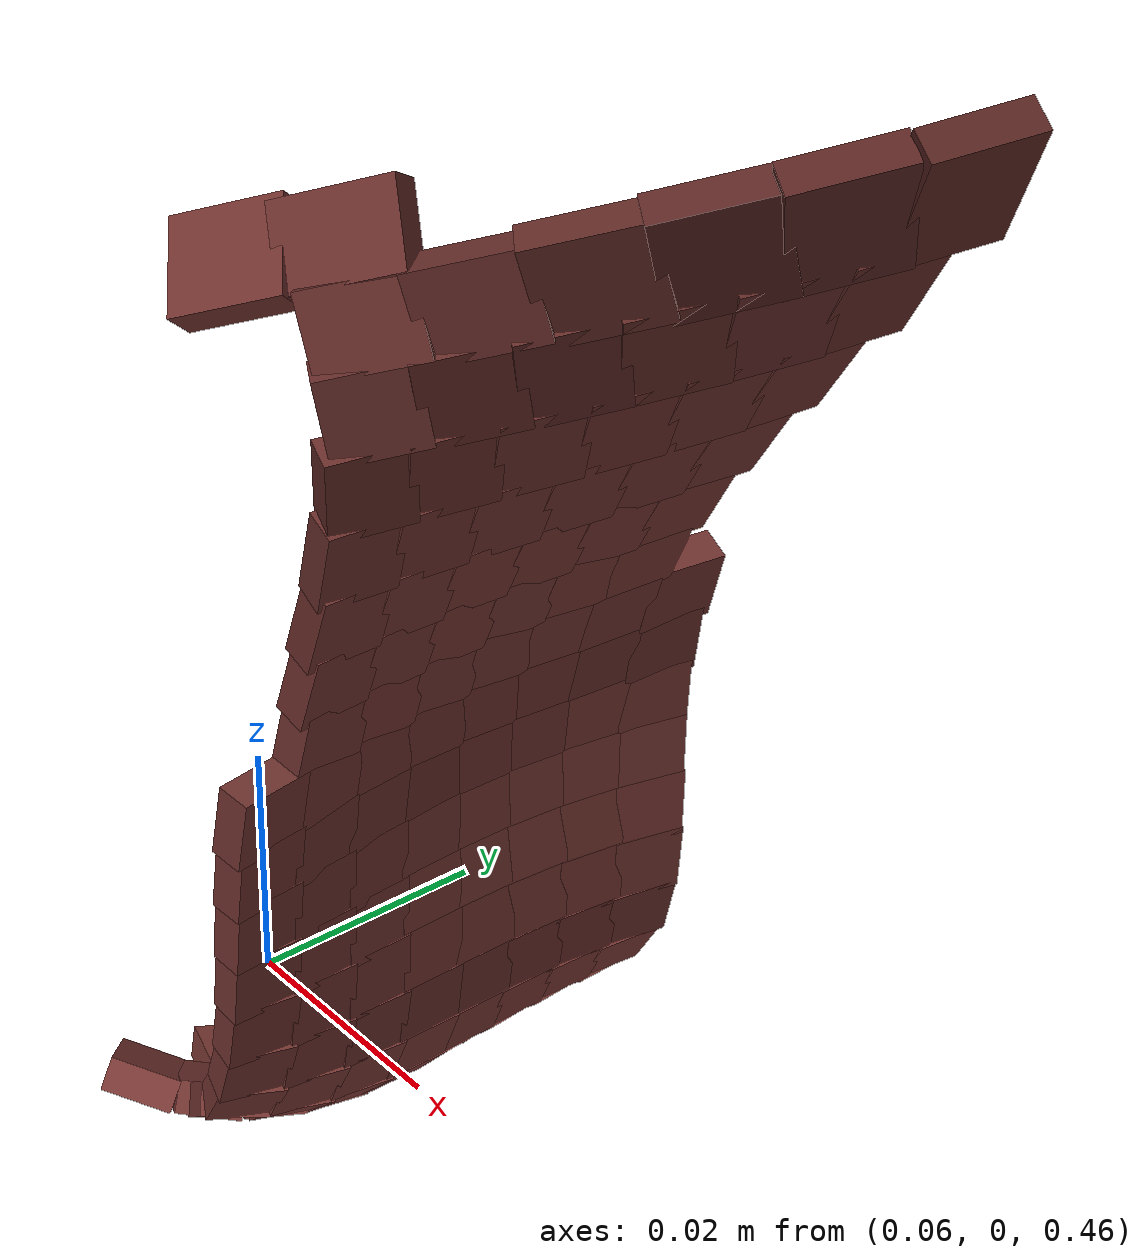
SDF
<sdf version="1.8">
 <model name="tissue">
  <static>true</static>
  <link name="t0">
   <pose>0.09798 -0.01728 0.54351 -1.0040 0.3484 -2.5284</pose>
   <visual name="v">
    <geometry><box><size>0.00852 0.00582 0.0025</size></box></geometry>
    <material>
     <ambient>0.225 0.099 0.092 1</ambient>
     <diffuse>0.409 0.181 0.168 1</diffuse>
     <specular>0.10 0.07 0.07 1</specular>
    </material>
   </visual>
  </link>
  <link name="t1">
   <pose>0.09230 -0.02112 0.54099 -0.7870 0.3561 -2.5637</pose>
   <visual name="v">
    <geometry><box><size>0.00785 0.00653 0.0025</size></box></geometry>
    <material>
     <ambient>0.237 0.106 0.099 1</ambient>
     <diffuse>0.432 0.193 0.179 1</diffuse>
     <specular>0.10 0.07 0.07 1</specular>
    </material>
   </visual>
  </link>
  <link name="t17">
   <pose>0.11983 0.01032 0.54684 1.0002 0.1118 -1.8621</pose>
   <visual name="v">
    <geometry><box><size>0.00759 0.01160 0.0025</size></box></geometry>
    <material>
     <ambient>0.178 0.073 0.067 1</ambient>
     <diffuse>0.324 0.132 0.122 1</diffuse>
     <specular>0.10 0.07 0.07 1</specular>
    </material>
   </visual>
  </link>
  <link name="t18">
   <pose>0.11719 0.00394 0.54581 1.0706 0.1767 -2.0452</pose>
   <visual name="v">
    <geometry><box><size>0.00800 0.01048 0.0025</size></box></geometry>
    <material>
     <ambient>0.184 0.076 0.070 1</ambient>
     <diffuse>0.335 0.138 0.128 1</diffuse>
     <specular>0.10 0.07 0.07 1</specular>
    </material>
   </visual>
  </link>
  <link name="t19">
   <pose>0.11354 -0.00214 0.54438 1.1790 0.2157 -2.1660</pose>
   <visual name="v">
    <geometry><box><size>0.00814 0.00904 0.0025</size></box></geometry>
    <material>
     <ambient>0.192 0.080 0.074 1</ambient>
     <diffuse>0.349 0.146 0.135 1</diffuse>
     <specular>0.10 0.07 0.07 1</specular>
    </material>
   </visual>
  </link>
  <link name="t20">
   <pose>0.10933 -0.00780 0.54273 1.3340 0.2398 -2.2466</pose>
   <visual name="v">
    <geometry><box><size>0.00802 0.00755 0.0025</size></box></geometry>
    <material>
     <ambient>0.201 0.086 0.079 1</ambient>
     <diffuse>0.365 0.156 0.144 1</diffuse>
     <specular>0.10 0.07 0.07 1</specular>
    </material>
   </visual>
  </link>
  <link name="t21">
   <pose>0.10490 -0.01299 0.54100 1.5450 0.2550 -2.3008</pose>
   <visual name="v">
    <geometry><box><size>0.00770 0.00632 0.0025</size></box></geometry>
    <material>
     <ambient>0.210 0.091 0.084 1</ambient>
     <diffuse>0.382 0.165 0.153 1</diffuse>
     <specular>0.10 0.07 0.07 1</specular>
    </material>
   </visual>
  </link>
  <link name="t22">
   <pose>0.10050 -0.01772 0.53928 -1.3326 0.2649 -2.3378</pose>
   <visual name="v">
    <geometry><box><size>0.00727 0.00560 0.0025</size></box></geometry>
    <material>
     <ambient>0.220 0.096 0.089 1</ambient>
     <diffuse>0.400 0.175 0.162 1</diffuse>
     <specular>0.10 0.07 0.07 1</specular>
    </material>
   </visual>
  </link>
  <link name="t39">
   <pose>0.11379 0.00980 0.53842 0.9377 0.0717 -1.7851</pose>
   <visual name="v">
    <geometry><box><size>0.00699 0.01139 0.0025</size></box></geometry>
    <material>
     <ambient>0.191 0.080 0.074 1</ambient>
     <diffuse>0.348 0.146 0.135 1</diffuse>
     <specular>0.10 0.07 0.07 1</specular>
    </material>
   </visual>
  </link>
  <link name="t40">
   <pose>0.11200 0.00377 0.53781 0.9821 0.1148 -1.9192</pose>
   <visual name="v">
    <geometry><box><size>0.00714 0.01061 0.0025</size></box></geometry>
    <material>
     <ambient>0.195 0.082 0.076 1</ambient>
     <diffuse>0.355 0.150 0.139 1</diffuse>
     <specular>0.10 0.07 0.07 1</specular>
    </material>
   </visual>
  </link>
  <link name="t41">
   <pose>0.10955 -0.00207 0.53699 1.0518 0.1416 -2.0068</pose>
   <visual name="v">
    <geometry><box><size>0.00711 0.00953 0.0025</size></box></geometry>
    <material>
     <ambient>0.200 0.085 0.079 1</ambient>
     <diffuse>0.364 0.155 0.144 1</diffuse>
     <specular>0.10 0.07 0.07 1</specular>
    </material>
   </visual>
  </link>
  <link name="t42">
   <pose>0.10676 -0.00762 0.53604 1.1540 0.1578 -2.0616</pose>
   <visual name="v">
    <geometry><box><size>0.00694 0.00831 0.0025</size></box></geometry>
    <material>
     <ambient>0.206 0.089 0.082 1</ambient>
     <diffuse>0.375 0.161 0.149 1</diffuse>
     <specular>0.10 0.07 0.07 1</specular>
    </material>
   </visual>
  </link>
  <link name="t43">
   <pose>0.10383 -0.01286 0.53505 1.3000 0.1671 -2.0939</pose>
   <visual name="v">
    <geometry><box><size>0.00667 0.00714 0.0025</size></box></geometry>
    <material>
     <ambient>0.213 0.092 0.086 1</ambient>
     <diffuse>0.387 0.168 0.156 1</diffuse>
     <specular>0.10 0.07 0.07 1</specular>
    </material>
   </visual>
  </link>
  <link name="t44">
   <pose>0.10091 -0.01780 0.53407 1.5025 0.1720 -2.1114</pose>
   <visual name="v">
    <geometry><box><size>0.00635 0.00617 0.0025</size></box></geometry>
    <material>
     <ambient>0.219 0.096 0.089 1</ambient>
     <diffuse>0.398 0.174 0.162 1</diffuse>
     <specular>0.10 0.07 0.07 1</specular>
    </material>
   </visual>
  </link>
  <link name="t61">
   <pose>0.10783 0.00929 0.53066 0.9228 0.0462 -1.7342</pose>
   <visual name="v">
    <geometry><box><size>0.00652 0.01042 0.0025</size></box></geometry>
    <material>
     <ambient>0.204 0.087 0.081 1</ambient>
     <diffuse>0.371 0.159 0.147 1</diffuse>
     <specular>0.10 0.07 0.07 1</specular>
    </material>
   </visual>
  </link>
  <link name="t62">
   <pose>0.10661 0.00359 0.53031 0.9521 0.0696 -1.8185</pose>
   <visual name="v">
    <geometry><box><size>0.00653 0.00993 0.0025</size></box></geometry>
    <material>
     <ambient>0.207 0.089 0.082 1</ambient>
     <diffuse>0.376 0.162 0.150 1</diffuse>
     <specular>0.10 0.07 0.07 1</specular>
    </material>
   </visual>
  </link>
  <link name="t63">
   <pose>0.10504 -0.00198 0.52987 1.0006 0.0828 -1.8671</pose>
   <visual name="v">
    <geometry><box><size>0.00644 0.00920 0.0025</size></box></geometry>
    <material>
     <ambient>0.210 0.091 0.084 1</ambient>
     <diffuse>0.382 0.165 0.153 1</diffuse>
     <specular>0.10 0.07 0.07 1</specular>
    </material>
   </visual>
  </link>
  <link name="t64">
   <pose>0.10331 -0.00737 0.52937 1.0722 0.0889 -1.8896</pose>
   <visual name="v">
    <geometry><box><size>0.00627 0.00835 0.0025</size></box></geometry>
    <material>
     <ambient>0.214 0.093 0.086 1</ambient>
     <diffuse>0.389 0.169 0.157 1</diffuse>
     <specular>0.10 0.07 0.07 1</specular>
    </material>
   </visual>
  </link>
  <link name="t65">
   <pose>0.10157 -0.01258 0.52888 1.1739 0.0900 -1.8938</pose>
   <visual name="v">
    <geometry><box><size>0.00607 0.00746 0.0025</size></box></geometry>
    <material>
     <ambient>0.217 0.095 0.088 1</ambient>
     <diffuse>0.395 0.173 0.160 1</diffuse>
     <specular>0.10 0.07 0.07 1</specular>
    </material>
   </visual>
  </link>
  <link name="t66">
   <pose>0.09989 -0.01762 0.52840 1.3144 0.0883 -1.8873</pose>
   <visual name="v">
    <geometry><box><size>0.00587 0.00664 0.0025</size></box></geometry>
    <material>
     <ambient>0.221 0.097 0.090 1</ambient>
     <diffuse>0.402 0.176 0.164 1</diffuse>
     <specular>0.10 0.07 0.07 1</specular>
    </material>
   </visual>
  </link>
  <link name="t83">
   <pose>0.10254 0.00883 0.52370 0.9444 0.0309 -1.7051</pose>
   <visual name="v">
    <geometry><box><size>0.00616 0.00916 0.0025</size></box></geometry>
    <material>
     <ambient>0.215 0.094 0.087 1</ambient>
     <diffuse>0.392 0.171 0.158 1</diffuse>
     <specular>0.10 0.07 0.07 1</specular>
    </material>
   </visual>
  </link>
  <link name="t84">
   <pose>0.10168 0.00342 0.52350 0.9635 0.0401 -1.7455</pose>
   <visual name="v">
    <geometry><box><size>0.00611 0.00888 0.0025</size></box></geometry>
    <material>
     <ambient>0.217 0.095 0.088 1</ambient>
     <diffuse>0.395 0.172 0.160 1</diffuse>
     <specular>0.10 0.07 0.07 1</specular>
    </material>
   </visual>
  </link>
  <link name="t85">
   <pose>0.10069 -0.00190 0.52327 0.9992 0.0429 -1.7578</pose>
   <visual name="v">
    <geometry><box><size>0.00601 0.00843 0.0025</size></box></geometry>
    <material>
     <ambient>0.219 0.096 0.089 1</ambient>
     <diffuse>0.399 0.175 0.162 1</diffuse>
     <specular>0.10 0.07 0.07 1</specular>
    </material>
   </visual>
  </link>
  <link name="t86">
   <pose>0.09971 -0.00712 0.52304 1.0538 0.0411 -1.7498</pose>
   <visual name="v">
    <geometry><box><size>0.00589 0.00789 0.0025</size></box></geometry>
    <material>
     <ambient>0.221 0.097 0.090 1</ambient>
     <diffuse>0.403 0.177 0.164 1</diffuse>
     <specular>0.10 0.07 0.07 1</specular>
    </material>
   </visual>
  </link>
  <link name="t87">
   <pose>0.09883 -0.01224 0.52284 1.1302 0.0363 -1.7288</pose>
   <visual name="v">
    <geometry><box><size>0.00578 0.00731 0.0025</size></box></geometry>
    <material>
     <ambient>0.223 0.098 0.091 1</ambient>
     <diffuse>0.406 0.179 0.166 1</diffuse>
     <specular>0.10 0.07 0.07 1</specular>
    </material>
   </visual>
  </link>
  <link name="t88">
   <pose>0.09809 -0.01730 0.52267 1.2317 0.0304 -1.7026</pose>
   <visual name="v">
    <geometry><box><size>0.00569 0.00675 0.0025</size></box></geometry>
    <material>
     <ambient>0.225 0.099 0.092 1</ambient>
     <diffuse>0.409 0.180 0.167 1</diffuse>
     <specular>0.10 0.07 0.07 1</specular>
    </material>
   </visual>
  </link>
  <link name="t105">
   <pose>0.09819 0.00846 0.51746 1.0007 0.0215 -1.6922</pose>
   <visual name="v">
    <geometry><box><size>0.00588 0.00792 0.0025</size></box></geometry>
    <material>
     <ambient>0.225 0.099 0.092 1</ambient>
     <diffuse>0.409 0.180 0.167 1</diffuse>
     <specular>0.10 0.07 0.07 1</specular>
    </material>
   </visual>
  </link>
  <link name="t106">
   <pose>0.09753 0.00328 0.51734 1.0116 0.0223 -1.6968</pose>
   <visual name="v">
    <geometry><box><size>0.00581 0.00776 0.0025</size></box></geometry>
    <material>
     <ambient>0.226 0.100 0.093 1</ambient>
     <diffuse>0.411 0.182 0.169 1</diffuse>
     <specular>0.10 0.07 0.07 1</specular>
    </material>
   </visual>
  </link>
  <link name="t107">
   <pose>0.09691 -0.00183 0.51723 1.0387 0.0193 -1.6795</pose>
   <visual name="v">
    <geometry><box><size>0.00572 0.00751 0.0025</size></box></geometry>
    <material>
     <ambient>0.227 0.101 0.093 1</ambient>
     <diffuse>0.414 0.183 0.170 1</diffuse>
     <specular>0.10 0.07 0.07 1</specular>
    </material>
   </visual>
  </link>
  <link name="t108">
   <pose>0.09644 -0.00688 0.51715 1.0823 0.0136 -1.6476</pose>
   <visual name="v">
    <geometry><box><size>0.00566 0.00720 0.0025</size></box></geometry>
    <material>
     <ambient>0.228 0.101 0.094 1</ambient>
     <diffuse>0.415 0.184 0.171 1</diffuse>
     <specular>0.10 0.07 0.07 1</specular>
    </material>
   </visual>
  </link>
  <link name="t109">
   <pose>0.09615 -0.01191 0.51710 1.1425 0.0067 -1.6087</pose>
   <visual name="v">
    <geometry><box><size>0.00563 0.00687 0.0025</size></box></geometry>
    <material>
     <ambient>0.229 0.102 0.094 1</ambient>
     <diffuse>0.417 0.185 0.171 1</diffuse>
     <specular>0.10 0.07 0.07 1</specular>
    </material>
   </visual>
  </link>
  <link name="t110">
   <pose>0.09605 -0.01694 0.51708 1.2182 0.0000 -1.5709</pose>
   <visual name="v">
    <geometry><box><size>0.00565 0.00655 0.0025</size></box></geometry>
    <material>
     <ambient>0.229 0.102 0.094 1</ambient>
     <diffuse>0.417 0.185 0.172 1</diffuse>
     <specular>0.10 0.07 0.07 1</specular>
    </material>
   </visual>
  </link>
  <link name="t127">
   <pose>0.09484 0.00817 0.51181 1.0916 0.0149 -1.6903</pose>
   <visual name="v">
    <geometry><box><size>0.00568 0.00686 0.0025</size></box></geometry>
    <material>
     <ambient>0.232 0.103 0.096 1</ambient>
     <diffuse>0.422 0.188 0.174 1</diffuse>
     <specular>0.10 0.07 0.07 1</specular>
    </material>
   </visual>
  </link>
  <link name="t128">
   <pose>0.09429 0.00317 0.51174 1.0955 0.0120 -1.6669</pose>
   <visual name="v">
    <geometry><box><size>0.00559 0.00678 0.0025</size></box></geometry>
    <material>
     <ambient>0.233 0.104 0.096 1</ambient>
     <diffuse>0.424 0.189 0.175 1</diffuse>
     <specular>0.10 0.07 0.07 1</specular>
    </material>
   </visual>
  </link>
  <link name="t129">
   <pose>0.09390 -0.00177 0.51170 1.1155 0.0070 -1.6273</pose>
   <visual name="v">
    <geometry><box><size>0.00553 0.00665 0.0025</size></box></geometry>
    <material>
     <ambient>0.234 0.104 0.097 1</ambient>
     <diffuse>0.425 0.190 0.176 1</diffuse>
     <specular>0.10 0.07 0.07 1</specular>
    </material>
   </visual>
  </link>
  <link name="t130">
   <pose>0.09374 -0.00669 0.51168 1.1499 0.0010 -1.5790</pose>
   <visual name="v">
    <geometry><box><size>0.00551 0.00650 0.0025</size></box></geometry>
    <material>
     <ambient>0.234 0.105 0.097 1</ambient>
     <diffuse>0.426 0.190 0.176 1</diffuse>
     <specular>0.10 0.07 0.07 1</specular>
    </material>
   </visual>
  </link>
  <link name="t131">
   <pose>0.09382 -0.01162 0.51169 1.1962 -0.0051 -1.5298</pose>
   <visual name="v">
    <geometry><box><size>0.00555 0.00634 0.0025</size></box></geometry>
    <material>
     <ambient>0.234 0.104 0.097 1</ambient>
     <diffuse>0.426 0.190 0.176 1</diffuse>
     <specular>0.10 0.07 0.07 1</specular>
    </material>
   </visual>
  </link>
  <link name="t132">
   <pose>0.09414 -0.01660 0.51173 1.2502 -0.0104 -1.4876</pose>
   <visual name="v">
    <geometry><box><size>0.00564 0.00620 0.0025</size></box></geometry>
    <material>
     <ambient>0.233 0.104 0.097 1</ambient>
     <diffuse>0.424 0.189 0.176 1</diffuse>
     <specular>0.10 0.07 0.07 1</specular>
    </material>
   </visual>
  </link>
  <link name="t148">
   <pose>0.09315 0.01291 0.50664 1.2310 0.0107 -1.7213</pose>
   <visual name="v">
    <geometry><box><size>0.00566 0.00609 0.0025</size></box></geometry>
    <material>
     <ambient>0.235 0.105 0.098 1</ambient>
     <diffuse>0.428 0.191 0.178 1</diffuse>
     <specular>0.10 0.07 0.07 1</specular>
    </material>
   </visual>
  </link>
  <link name="t149">
   <pose>0.09246 0.00796 0.50659 1.2123 0.0088 -1.6948</pose>
   <visual name="v">
    <geometry><box><size>0.00554 0.00608 0.0025</size></box></geometry>
    <material>
     <ambient>0.237 0.106 0.099 1</ambient>
     <diffuse>0.431 0.193 0.179 1</diffuse>
     <specular>0.10 0.07 0.07 1</specular>
    </material>
   </visual>
  </link>
  <link name="t150">
   <pose>0.09195 0.00309 0.50656 1.2110 0.0057 -1.6505</pose>
   <visual name="v">
    <geometry><box><size>0.00544 0.00603 0.0025</size></box></geometry>
    <material>
     <ambient>0.238 0.107 0.099 1</ambient>
     <diffuse>0.433 0.194 0.180 1</diffuse>
     <specular>0.10 0.07 0.07 1</specular>
    </material>
   </visual>
  </link>
  <link name="t151">
   <pose>0.09169 -0.00173 0.50654 1.2243 0.0018 -1.5954</pose>
   <visual name="v">
    <geometry><box><size>0.00539 0.00597 0.0025</size></box></geometry>
    <material>
     <ambient>0.239 0.107 0.099 1</ambient>
     <diffuse>0.434 0.195 0.181 1</diffuse>
     <specular>0.10 0.07 0.07 1</specular>
    </material>
   </visual>
  </link>
  <link name="t152">
   <pose>0.09171 -0.00655 0.50654 1.2488 -0.0024 -1.5372</pose>
   <visual name="v">
    <geometry><box><size>0.00541 0.00592 0.0025</size></box></geometry>
    <material>
     <ambient>0.239 0.107 0.099 1</ambient>
     <diffuse>0.434 0.194 0.181 1</diffuse>
     <specular>0.10 0.07 0.07 1</specular>
    </material>
   </visual>
  </link>
  <link name="t153">
   <pose>0.09201 -0.01140 0.50656 1.2798 -0.0062 -1.4839</pose>
   <visual name="v">
    <geometry><box><size>0.00549 0.00587 0.0025</size></box></geometry>
    <material>
     <ambient>0.238 0.107 0.099 1</ambient>
     <diffuse>0.433 0.194 0.180 1</diffuse>
     <specular>0.10 0.07 0.07 1</specular>
    </material>
   </visual>
  </link>
  <link name="t154">
   <pose>0.09255 -0.01632 0.50660 1.3116 -0.0091 -1.4430</pose>
   <visual name="v">
    <geometry><box><size>0.00562 0.00585 0.0025</size></box></geometry>
    <material>
     <ambient>0.237 0.106 0.098 1</ambient>
     <diffuse>0.431 0.193 0.179 1</diffuse>
     <specular>0.10 0.07 0.07 1</specular>
    </material>
   </visual>
  </link>
  <link name="t170">
   <pose>0.09171 0.01271 0.50166 1.3660 0.0032 -1.7477</pose>
   <visual name="v">
    <geometry><box><size>0.00562 0.00563 0.0025</size></box></geometry>
    <material>
     <ambient>0.239 0.107 0.099 1</ambient>
     <diffuse>0.434 0.194 0.181 1</diffuse>
     <specular>0.10 0.07 0.07 1</specular>
    </material>
   </visual>
  </link>
  <link name="t171">
   <pose>0.09094 0.00783 0.50164 1.3478 0.0024 -1.7018</pose>
   <visual name="v">
    <geometry><box><size>0.00546 0.00560 0.0025</size></box></geometry>
    <material>
     <ambient>0.240 0.108 0.100 1</ambient>
     <diffuse>0.437 0.196 0.182 1</diffuse>
     <specular>0.10 0.07 0.07 1</specular>
    </material>
   </visual>
  </link>
  <link name="t172">
   <pose>0.09045 0.00304 0.50163 1.3441 0.0013 -1.6429</pose>
   <visual name="v">
    <geometry><box><size>0.00535 0.00557 0.0025</size></box></geometry>
    <material>
     <ambient>0.241 0.108 0.101 1</ambient>
     <diffuse>0.439 0.197 0.183 1</diffuse>
     <specular>0.10 0.07 0.07 1</specular>
    </material>
   </visual>
  </link>
  <link name="t173">
   <pose>0.09026 -0.00170 0.50163 1.3514 0.0001 -1.5781</pose>
   <visual name="v">
    <geometry><box><size>0.00531 0.00554 0.0025</size></box></geometry>
    <material>
     <ambient>0.242 0.109 0.101 1</ambient>
     <diffuse>0.439 0.198 0.184 1</diffuse>
     <specular>0.10 0.07 0.07 1</specular>
    </material>
   </visual>
  </link>
  <link name="t174">
   <pose>0.09038 -0.00645 0.50163 1.3648 -0.0010 -1.5158</pose>
   <visual name="v">
    <geometry><box><size>0.00535 0.00553 0.0025</size></box></geometry>
    <material>
     <ambient>0.241 0.109 0.101 1</ambient>
     <diffuse>0.439 0.197 0.183 1</diffuse>
     <specular>0.10 0.07 0.07 1</specular>
    </material>
   </visual>
  </link>
  <link name="t175">
   <pose>0.09077 -0.01124 0.50164 1.3788 -0.0019 -1.4638</pose>
   <visual name="v">
    <geometry><box><size>0.00544 0.00555 0.0025</size></box></geometry>
    <material>
     <ambient>0.241 0.108 0.100 1</ambient>
     <diffuse>0.437 0.197 0.183 1</diffuse>
     <specular>0.10 0.07 0.07 1</specular>
    </material>
   </visual>
  </link>
  <link name="t176">
   <pose>0.09140 -0.01612 0.50165 1.3874 -0.0026 -1.4289</pose>
   <visual name="v">
    <geometry><box><size>0.00557 0.00558 0.0025</size></box></geometry>
    <material>
     <ambient>0.239 0.107 0.100 1</ambient>
     <diffuse>0.435 0.195 0.181 1</diffuse>
     <specular>0.10 0.07 0.07 1</specular>
    </material>
   </visual>
  </link>
  <link name="t177">
   <pose>0.09215 -0.02109 0.50166 1.3849 -0.0028 -1.4170</pose>
   <visual name="v">
    <geometry><box><size>0.00569 0.00563 0.0025</size></box></geometry>
    <material>
     <ambient>0.238 0.106 0.099 1</ambient>
     <diffuse>0.432 0.194 0.180 1</diffuse>
     <specular>0.10 0.07 0.07 1</specular>
    </material>
   </visual>
  </link>
  <link name="t192">
   <pose>0.09098 0.01261 0.49680 1.4837 -0.0069 -1.7672</pose>
   <visual name="v">
    <geometry><box><size>0.00561 0.00544 0.0025</size></box></geometry>
    <material>
     <ambient>0.240 0.108 0.100 1</ambient>
     <diffuse>0.437 0.196 0.182 1</diffuse>
     <specular>0.10 0.07 0.07 1</specular>
    </material>
   </visual>
  </link>
  <link name="t193">
   <pose>0.09016 0.00777 0.49683 1.4721 -0.0048 -1.7078</pose>
   <visual name="v">
    <geometry><box><size>0.00542 0.00539 0.0025</size></box></geometry>
    <material>
     <ambient>0.242 0.109 0.101 1</ambient>
     <diffuse>0.440 0.198 0.184 1</diffuse>
     <specular>0.10 0.07 0.07 1</specular>
    </material>
   </visual>
  </link>
  <link name="t194">
   <pose>0.08967 0.00302 0.49684 1.4701 -0.0024 -1.6397</pose>
   <visual name="v">
    <geometry><box><size>0.00530 0.00536 0.0025</size></box></geometry>
    <material>
     <ambient>0.243 0.109 0.102 1</ambient>
     <diffuse>0.442 0.199 0.185 1</diffuse>
     <specular>0.10 0.07 0.07 1</specular>
    </material>
   </visual>
  </link>
  <link name="t195">
   <pose>0.08951 -0.00169 0.49685 1.4733 -0.0000 -1.5709</pose>
   <visual name="v">
    <geometry><box><size>0.00527 0.00535 0.0025</size></box></geometry>
    <material>
     <ambient>0.243 0.110 0.102 1</ambient>
     <diffuse>0.442 0.199 0.185 1</diffuse>
     <specular>0.10 0.07 0.07 1</specular>
    </material>
   </visual>
  </link>
  <link name="t196">
   <pose>0.08966 -0.00640 0.49684 1.4764 0.0021 -1.5097</pose>
   <visual name="v">
    <geometry><box><size>0.00531 0.00536 0.0025</size></box></geometry>
    <material>
     <ambient>0.243 0.109 0.102 1</ambient>
     <diffuse>0.442 0.199 0.185 1</diffuse>
     <specular>0.10 0.07 0.07 1</specular>
    </material>
   </visual>
  </link>
  <link name="t197">
   <pose>0.09007 -0.01116 0.49683 1.4739 0.0038 -1.4638</pose>
   <visual name="v">
    <geometry><box><size>0.00540 0.00538 0.0025</size></box></geometry>
    <material>
     <ambient>0.242 0.109 0.101 1</ambient>
     <diffuse>0.440 0.198 0.184 1</diffuse>
     <specular>0.10 0.07 0.07 1</specular>
    </material>
   </visual>
  </link>
  <link name="t198">
   <pose>0.09066 -0.01599 0.49681 1.4604 0.0046 -1.4397</pose>
   <visual name="v">
    <geometry><box><size>0.00551 0.00543 0.0025</size></box></geometry>
    <material>
     <ambient>0.241 0.108 0.101 1</ambient>
     <diffuse>0.438 0.197 0.183 1</diffuse>
     <specular>0.10 0.07 0.07 1</specular>
    </material>
   </visual>
  </link>
  <link name="t199">
   <pose>0.09132 -0.02090 0.49678 1.4303 0.0045 -1.4432</pose>
   <visual name="v">
    <geometry><box><size>0.00558 0.00548 0.0025</size></box></geometry>
    <material>
     <ambient>0.239 0.107 0.100 1</ambient>
     <diffuse>0.435 0.195 0.182 1</diffuse>
     <specular>0.10 0.07 0.07 1</specular>
    </material>
   </visual>
  </link>
  <link name="t214">
   <pose>0.09077 0.01258 0.49197 1.5584 -0.0181 -1.7770</pose>
   <visual name="v">
    <geometry><box><size>0.00562 0.00541 0.0025</size></box></geometry>
    <material>
     <ambient>0.241 0.108 0.100 1</ambient>
     <diffuse>0.437 0.197 0.183 1</diffuse>
     <specular>0.10 0.07 0.07 1</specular>
    </material>
   </visual>
  </link>
  <link name="t215">
   <pose>0.08992 0.00775 0.49205 1.5579 -0.0122 -1.7091</pose>
   <visual name="v">
    <geometry><box><size>0.00541 0.00536 0.0025</size></box></geometry>
    <material>
     <ambient>0.242 0.109 0.101 1</ambient>
     <diffuse>0.441 0.198 0.184 1</diffuse>
     <specular>0.10 0.07 0.07 1</specular>
    </material>
   </visual>
  </link>
  <link name="t216">
   <pose>0.08943 0.00301 0.49209 1.5613 -0.0059 -1.6372</pose>
   <visual name="v">
    <geometry><box><size>0.00528 0.00533 0.0025</size></box></geometry>
    <material>
     <ambient>0.243 0.110 0.102 1</ambient>
     <diffuse>0.443 0.200 0.185 1</diffuse>
     <specular>0.10 0.07 0.07 1</specular>
    </material>
   </visual>
  </link>
  <link name="t217">
   <pose>0.08928 -0.00168 0.49210 1.5635 0.0001 -1.5696</pose>
   <visual name="v">
    <geometry><box><size>0.00525 0.00532 0.0025</size></box></geometry>
    <material>
     <ambient>0.244 0.110 0.102 1</ambient>
     <diffuse>0.443 0.200 0.186 1</diffuse>
     <specular>0.10 0.07 0.07 1</specular>
    </material>
   </visual>
  </link>
  <link name="t218">
   <pose>0.08943 -0.00638 0.49209 1.5594 0.0049 -1.5148</pose>
   <visual name="v">
    <geometry><box><size>0.00529 0.00533 0.0025</size></box></geometry>
    <material>
     <ambient>0.243 0.110 0.102 1</ambient>
     <diffuse>0.443 0.200 0.185 1</diffuse>
     <specular>0.10 0.07 0.07 1</specular>
    </material>
   </visual>
  </link>
  <link name="t219">
   <pose>0.08979 -0.01112 0.49206 1.5438 0.0080 -1.4802</pose>
   <visual name="v">
    <geometry><box><size>0.00536 0.00535 0.0025</size></box></geometry>
    <material>
     <ambient>0.243 0.109 0.102 1</ambient>
     <diffuse>0.441 0.199 0.185 1</diffuse>
     <specular>0.10 0.07 0.07 1</specular>
    </material>
   </visual>
  </link>
  <link name="t220">
   <pose>0.09026 -0.01592 0.49201 1.5115 0.0087 -1.4722</pose>
   <visual name="v">
    <geometry><box><size>0.00543 0.00537 0.0025</size></box></geometry>
    <material>
     <ambient>0.242 0.109 0.101 1</ambient>
     <diffuse>0.439 0.198 0.184 1</diffuse>
     <specular>0.10 0.07 0.07 1</specular>
    </material>
   </visual>
  </link>
  <link name="t221">
   <pose>0.09070 -0.02076 0.49198 1.4565 0.0065 -1.4970</pose>
   <visual name="v">
    <geometry><box><size>0.00544 0.00539 0.0025</size></box></geometry>
    <material>
     <ambient>0.241 0.108 0.101 1</ambient>
     <diffuse>0.438 0.197 0.183 1</diffuse>
     <specular>0.10 0.07 0.07 1</specular>
    </material>
   </visual>
  </link>
  <link name="t236">
   <pose>0.09078 0.01259 0.48713 1.5705 -0.0285 -1.7737</pose>
   <visual name="v">
    <geometry><box><size>0.00561 0.00541 0.0025</size></box></geometry>
    <material>
     <ambient>0.241 0.108 0.100 1</ambient>
     <diffuse>0.437 0.197 0.183 1</diffuse>
     <specular>0.10 0.07 0.07 1</specular>
    </material>
   </visual>
  </link>
  <link name="t237">
   <pose>0.08996 0.00775 0.48725 -1.5580 -0.0186 -1.7021</pose>
   <visual name="v">
    <geometry><box><size>0.00540 0.00538 0.0025</size></box></geometry>
    <material>
     <ambient>0.242 0.109 0.101 1</ambient>
     <diffuse>0.441 0.198 0.184 1</diffuse>
     <specular>0.10 0.07 0.07 1</specular>
    </material>
   </visual>
  </link>
  <link name="t238">
   <pose>0.08951 0.00301 0.48731 -1.5464 -0.0086 -1.6315</pose>
   <visual name="v">
    <geometry><box><size>0.00529 0.00536 0.0025</size></box></geometry>
    <material>
     <ambient>0.243 0.110 0.102 1</ambient>
     <diffuse>0.442 0.199 0.185 1</diffuse>
     <specular>0.10 0.07 0.07 1</specular>
    </material>
   </visual>
  </link>
  <link name="t239">
   <pose>0.08937 -0.00169 0.48733 -1.5418 0.0000 -1.5706</pose>
   <visual name="v">
    <geometry><box><size>0.00526 0.00536 0.0025</size></box></geometry>
    <material>
     <ambient>0.244 0.110 0.102 1</ambient>
     <diffuse>0.443 0.200 0.186 1</diffuse>
     <specular>0.10 0.07 0.07 1</specular>
    </material>
   </visual>
  </link>
  <link name="t240">
   <pose>0.08949 -0.00639 0.48732 -1.5493 0.0061 -1.5277</pose>
   <visual name="v">
    <geometry><box><size>0.00528 0.00536 0.0025</size></box></geometry>
    <material>
     <ambient>0.243 0.110 0.102 1</ambient>
     <diffuse>0.442 0.199 0.185 1</diffuse>
     <specular>0.10 0.07 0.07 1</specular>
    </material>
   </visual>
  </link>
  <link name="t241">
   <pose>0.08975 -0.01112 0.48728 1.5678 0.0086 -1.5099</pose>
   <visual name="v">
    <geometry><box><size>0.00533 0.00535 0.0025</size></box></geometry>
    <material>
     <ambient>0.243 0.109 0.102 1</ambient>
     <diffuse>0.441 0.199 0.185 1</diffuse>
     <specular>0.10 0.07 0.07 1</specular>
    </material>
   </visual>
  </link>
  <link name="t242">
   <pose>0.09003 -0.01588 0.48724 1.5205 0.0066 -1.5239</pose>
   <visual name="v">
    <geometry><box><size>0.00534 0.00534 0.0025</size></box></geometry>
    <material>
     <ambient>0.242 0.109 0.101 1</ambient>
     <diffuse>0.440 0.198 0.184 1</diffuse>
     <specular>0.10 0.07 0.07 1</specular>
    </material>
   </visual>
  </link>
  <link name="t243">
   <pose>0.09015 -0.02063 0.48722 1.4433 -0.0009 -1.5771</pose>
   <visual name="v">
    <geometry><box><size>0.00529 0.00533 0.0025</size></box></geometry>
    <material>
     <ambient>0.242 0.109 0.101 1</ambient>
     <diffuse>0.440 0.198 0.184 1</diffuse>
     <specular>0.10 0.07 0.07 1</specular>
    </material>
   </visual>
  </link>
  <link name="t258">
   <pose>0.09066 0.01257 0.48232 1.5007 -0.0353 -1.7529</pose>
   <visual name="v">
    <geometry><box><size>0.00557 0.00534 0.0025</size></box></geometry>
    <material>
     <ambient>0.241 0.108 0.101 1</ambient>
     <diffuse>0.438 0.197 0.183 1</diffuse>
     <specular>0.10 0.07 0.07 1</specular>
    </material>
   </visual>
  </link>
  <link name="t259">
   <pose>0.08995 0.00775 0.48246 1.5301 -0.0217 -1.6826</pose>
   <visual name="v">
    <geometry><box><size>0.00538 0.00532 0.0025</size></box></geometry>
    <material>
     <ambient>0.242 0.109 0.101 1</ambient>
     <diffuse>0.441 0.198 0.184 1</diffuse>
     <specular>0.10 0.07 0.07 1</specular>
    </material>
   </visual>
  </link>
  <link name="t260">
   <pose>0.08958 0.00301 0.48253 1.5530 -0.0094 -1.6188</pose>
   <visual name="v">
    <geometry><box><size>0.00528 0.00532 0.0025</size></box></geometry>
    <material>
     <ambient>0.243 0.110 0.102 1</ambient>
     <diffuse>0.442 0.199 0.185 1</diffuse>
     <specular>0.10 0.07 0.07 1</specular>
    </material>
   </visual>
  </link>
  <link name="t261">
   <pose>0.08948 -0.00169 0.48255 1.5635 0.0001 -1.5703</pose>
   <visual name="v">
    <geometry><box><size>0.00526 0.00533 0.0025</size></box></geometry>
    <material>
     <ambient>0.243 0.110 0.102 1</ambient>
     <diffuse>0.443 0.199 0.185 1</diffuse>
     <specular>0.10 0.07 0.07 1</specular>
    </material>
   </visual>
  </link>
  <link name="t262">
   <pose>0.08955 -0.00639 0.48254 1.5563 0.0050 -1.5450</pose>
   <visual name="v">
    <geometry><box><size>0.00528 0.00532 0.0025</size></box></geometry>
    <material>
     <ambient>0.243 0.110 0.102 1</ambient>
     <diffuse>0.442 0.199 0.185 1</diffuse>
     <specular>0.10 0.07 0.07 1</specular>
    </material>
   </visual>
  </link>
  <link name="t263">
   <pose>0.08968 -0.01111 0.48251 1.5259 0.0041 -1.5500</pose>
   <visual name="v">
    <geometry><box><size>0.00529 0.00531 0.0025</size></box></geometry>
    <material>
     <ambient>0.243 0.109 0.102 1</ambient>
     <diffuse>0.442 0.199 0.185 1</diffuse>
     <specular>0.10 0.07 0.07 1</specular>
    </material>
   </visual>
  </link>
  <link name="t264">
   <pose>0.08971 -0.01582 0.48251 1.4659 -0.0042 -1.5924</pose>
   <visual name="v">
    <geometry><box><size>0.00525 0.00527 0.0025</size></box></geometry>
    <material>
     <ambient>0.243 0.109 0.102 1</ambient>
     <diffuse>0.442 0.199 0.185 1</diffuse>
     <specular>0.10 0.07 0.07 1</specular>
    </material>
   </visual>
  </link>
  <link name="t265">
   <pose>0.08943 -0.02047 0.48256 1.3684 -0.0215 -1.6811</pose>
   <visual name="v">
    <geometry><box><size>0.00516 0.00524 0.0025</size></box></geometry>
    <material>
     <ambient>0.243 0.110 0.102 1</ambient>
     <diffuse>0.443 0.200 0.185 1</diffuse>
     <specular>0.10 0.07 0.07 1</specular>
    </material>
   </visual>
  </link>
  <link name="t280">
   <pose>0.08996 0.01247 0.47767 1.3219 -0.0345 -1.7101</pose>
   <visual name="v">
    <geometry><box><size>0.00545 0.00520 0.0025</size></box></geometry>
    <material>
     <ambient>0.242 0.109 0.101 1</ambient>
     <diffuse>0.441 0.198 0.184 1</diffuse>
     <specular>0.10 0.07 0.07 1</specular>
    </material>
   </visual>
  </link>
  <link name="t281">
   <pose>0.08945 0.00770 0.47779 1.3719 -0.0187 -1.6464</pose>
   <visual name="v">
    <geometry><box><size>0.00531 0.00518 0.0025</size></box></geometry>
    <material>
     <ambient>0.243 0.110 0.102 1</ambient>
     <diffuse>0.443 0.199 0.185 1</diffuse>
     <specular>0.10 0.07 0.07 1</specular>
    </material>
   </visual>
  </link>
  <link name="t282">
   <pose>0.08923 0.00300 0.47785 1.4109 -0.0061 -1.5953</pose>
   <visual name="v">
    <geometry><box><size>0.00525 0.00518 0.0025</size></box></geometry>
    <material>
     <ambient>0.244 0.110 0.102 1</ambient>
     <diffuse>0.443 0.200 0.186 1</diffuse>
     <specular>0.10 0.07 0.07 1</specular>
    </material>
   </visual>
  </link>
  <link name="t283">
   <pose>0.08920 -0.00168 0.47786 1.4318 0.0014 -1.5650</pose>
   <visual name="v">
    <geometry><box><size>0.00525 0.00519 0.0025</size></box></geometry>
    <material>
     <ambient>0.244 0.110 0.102 1</ambient>
     <diffuse>0.444 0.200 0.186 1</diffuse>
     <specular>0.10 0.07 0.07 1</specular>
    </material>
   </visual>
  </link>
  <link name="t284">
   <pose>0.08925 -0.00637 0.47785 1.4282 0.0019 -1.5632</pose>
   <visual name="v">
    <geometry><box><size>0.00525 0.00519 0.0025</size></box></geometry>
    <material>
     <ambient>0.244 0.110 0.102 1</ambient>
     <diffuse>0.443 0.200 0.186 1</diffuse>
     <specular>0.10 0.07 0.07 1</specular>
    </material>
   </visual>
  </link>
  <link name="t285">
   <pose>0.08923 -0.01105 0.47785 1.3943 -0.0064 -1.5968</pose>
   <visual name="v">
    <geometry><box><size>0.00523 0.00517 0.0025</size></box></geometry>
    <material>
     <ambient>0.244 0.110 0.102 1</ambient>
     <diffuse>0.443 0.200 0.186 1</diffuse>
     <specular>0.10 0.07 0.07 1</specular>
    </material>
   </visual>
  </link>
  <link name="t286">
   <pose>0.08895 -0.01569 0.47792 1.3232 -0.0255 -1.6738</pose>
   <visual name="v">
    <geometry><box><size>0.00516 0.00515 0.0025</size></box></geometry>
    <material>
     <ambient>0.244 0.110 0.103 1</ambient>
     <diffuse>0.445 0.201 0.186 1</diffuse>
     <specular>0.10 0.07 0.07 1</specular>
    </material>
   </visual>
  </link>
  <link name="t287">
   <pose>0.08822 -0.02019 0.47810 1.2111 -0.0571 -1.8033</pose>
   <visual name="v">
    <geometry><box><size>0.00506 0.00515 0.0025</size></box></geometry>
    <material>
     <ambient>0.246 0.111 0.103 1</ambient>
     <diffuse>0.447 0.202 0.188 1</diffuse>
     <specular>0.10 0.07 0.07 1</specular>
    </material>
   </visual>
  </link>
  <link name="t302">
   <pose>0.08818 0.01222 0.47341 1.0126 -0.0212 -1.6412</pose>
   <visual name="v">
    <geometry><box><size>0.00525 0.00523 0.0025</size></box></geometry>
    <material>
     <ambient>0.246 0.111 0.103 1</ambient>
     <diffuse>0.448 0.202 0.188 1</diffuse>
     <specular>0.10 0.07 0.07 1</specular>
    </material>
   </visual>
  </link>
  <link name="t303">
   <pose>0.08798 0.00758 0.47347 1.0844 -0.0058 -1.5902</pose>
   <visual name="v">
    <geometry><box><size>0.00518 0.00511 0.0025</size></box></geometry>
    <material>
     <ambient>0.247 0.111 0.104 1</ambient>
     <diffuse>0.448 0.203 0.188 1</diffuse>
     <specular>0.10 0.07 0.07 1</specular>
    </material>
   </visual>
  </link>
  <link name="t304">
   <pose>0.08798 0.00296 0.47347 1.1425 0.0039 -1.5578</pose>
   <visual name="v">
    <geometry><box><size>0.00517 0.00506 0.0025</size></box></geometry>
    <material>
     <ambient>0.247 0.111 0.104 1</ambient>
     <diffuse>0.448 0.203 0.188 1</diffuse>
     <specular>0.10 0.07 0.07 1</specular>
    </material>
   </visual>
  </link>
  <link name="t305">
   <pose>0.08807 -0.00166 0.47345 1.1773 0.0058 -1.5515</pose>
   <visual name="v">
    <geometry><box><size>0.00518 0.00505 0.0025</size></box></geometry>
    <material>
     <ambient>0.246 0.111 0.104 1</ambient>
     <diffuse>0.448 0.203 0.188 1</diffuse>
     <specular>0.10 0.07 0.07 1</specular>
    </material>
   </visual>
  </link>
  <link name="t306">
   <pose>0.08812 -0.00629 0.47343 1.1810 -0.0023 -1.5783</pose>
   <visual name="v">
    <geometry><box><size>0.00518 0.00505 0.0025</size></box></geometry>
    <material>
     <ambient>0.246 0.111 0.103 1</ambient>
     <diffuse>0.448 0.202 0.188 1</diffuse>
     <specular>0.10 0.07 0.07 1</specular>
    </material>
   </visual>
  </link>
  <link name="t307">
   <pose>0.08795 -0.01089 0.47348 1.1475 -0.0225 -1.6456</pose>
   <visual name="v">
    <geometry><box><size>0.00514 0.00506 0.0025</size></box></geometry>
    <material>
     <ambient>0.247 0.112 0.104 1</ambient>
     <diffuse>0.448 0.203 0.188 1</diffuse>
     <specular>0.10 0.07 0.07 1</specular>
    </material>
   </visual>
  </link>
  <link name="t308">
   <pose>0.08738 -0.01541 0.47365 1.0744 -0.0571 -1.7616</pose>
   <visual name="v">
    <geometry><box><size>0.00506 0.00510 0.0025</size></box></geometry>
    <material>
     <ambient>0.248 0.112 0.104 1</ambient>
     <diffuse>0.451 0.204 0.190 1</diffuse>
     <specular>0.10 0.07 0.07 1</specular>
    </material>
   </visual>
  </link>
  <link name="t309">
   <pose>0.08619 -0.01973 0.47401 0.9703 -0.1063 -1.9327</pose>
   <visual name="v">
    <geometry><box><size>0.00501 0.00519 0.0025</size></box></geometry>
    <material>
     <ambient>0.250 0.114 0.106 1</ambient>
     <diffuse>0.455 0.207 0.192 1</diffuse>
     <specular>0.10 0.07 0.07 1</specular>
    </material>
   </visual>
  </link>
  <link name="t324">
   <pose>0.08488 0.01177 0.46989 0.6257 0.0091 -1.5451</pose>
   <visual name="v">
    <geometry><box><size>0.00498 0.00581 0.0025</size></box></geometry>
    <material>
     <ambient>0.253 0.115 0.107 1</ambient>
     <diffuse>0.460 0.210 0.195 1</diffuse>
     <specular>0.10 0.07 0.07 1</specular>
    </material>
   </visual>
  </link>
  <link name="t325">
   <pose>0.08508 0.00733 0.46982 0.7028 0.0204 -1.5132</pose>
   <visual name="v">
    <geometry><box><size>0.00499 0.00552 0.0025</size></box></geometry>
    <material>
     <ambient>0.253 0.115 0.107 1</ambient>
     <diffuse>0.460 0.209 0.194 1</diffuse>
     <specular>0.10 0.07 0.07 1</specular>
    </material>
   </visual>
  </link>
  <link name="t326">
   <pose>0.08537 0.00287 0.46972 0.7682 0.0233 -1.5050</pose>
   <visual name="v">
    <geometry><box><size>0.00502 0.00535 0.0025</size></box></geometry>
    <material>
     <ambient>0.252 0.115 0.107 1</ambient>
     <diffuse>0.459 0.208 0.194 1</diffuse>
     <specular>0.10 0.07 0.07 1</specular>
    </material>
   </visual>
  </link>
  <link name="t327">
   <pose>0.08563 -0.00162 0.46962 0.8107 0.0155 -1.5272</pose>
   <visual name="v">
    <geometry><box><size>0.00504 0.00526 0.0025</size></box></geometry>
    <material>
     <ambient>0.252 0.114 0.106 1</ambient>
     <diffuse>0.457 0.208 0.193 1</diffuse>
     <specular>0.10 0.07 0.07 1</specular>
    </material>
   </visual>
  </link>
  <link name="t328">
   <pose>0.08572 -0.00612 0.46959 0.8216 -0.0056 -1.5866</pose>
   <visual name="v">
    <geometry><box><size>0.00503 0.00524 0.0025</size></box></geometry>
    <material>
     <ambient>0.251 0.114 0.106 1</ambient>
     <diffuse>0.457 0.208 0.193 1</diffuse>
     <specular>0.10 0.07 0.07 1</specular>
    </material>
   </visual>
  </link>
  <link name="t329">
   <pose>0.08544 -0.01058 0.46969 0.7980 -0.0424 -1.6908</pose>
   <visual name="v">
    <geometry><box><size>0.00499 0.00529 0.0025</size></box></geometry>
    <material>
     <ambient>0.252 0.115 0.107 1</ambient>
     <diffuse>0.458 0.208 0.194 1</diffuse>
     <specular>0.10 0.07 0.07 1</specular>
    </material>
   </visual>
  </link>
  <link name="t330">
   <pose>0.08460 -0.01492 0.46999 0.7470 -0.0964 -1.8468</pose>
   <visual name="v">
    <geometry><box><size>0.00494 0.00540 0.0025</size></box></geometry>
    <material>
     <ambient>0.254 0.116 0.108 1</ambient>
     <diffuse>0.461 0.210 0.195 1</diffuse>
     <specular>0.10 0.07 0.07 1</specular>
    </material>
   </visual>
  </link>
  <link name="t331">
   <pose>0.08300 -0.01900 0.47056 0.6917 -0.1636 -2.0549</pose>
   <visual name="v">
    <geometry><box><size>0.00498 0.00559 0.0025</size></box></geometry>
    <material>
     <ambient>0.257 0.118 0.109 1</ambient>
     <diffuse>0.468 0.214 0.199 1</diffuse>
     <specular>0.10 0.07 0.07 1</specular>
    </material>
   </visual>
  </link>
  <link name="t346">
   <pose>0.07981 0.01106 0.46744 0.2941 0.0584 -1.4269</pose>
   <visual name="v">
    <geometry><box><size>0.00466 0.00702 0.0025</size></box></geometry>
    <material>
     <ambient>0.264 0.121 0.113 1</ambient>
     <diffuse>0.480 0.221 0.205 1</diffuse>
     <specular>0.10 0.07 0.07 1</specular>
    </material>
   </visual>
  </link>
  <link name="t347">
   <pose>0.08044 0.00693 0.46718 0.3538 0.0615 -1.4193</pose>
   <visual name="v">
    <geometry><box><size>0.00473 0.00660 0.0025</size></box></geometry>
    <material>
     <ambient>0.263 0.121 0.112 1</ambient>
     <diffuse>0.478 0.219 0.204 1</diffuse>
     <specular>0.10 0.07 0.07 1</specular>
    </material>
   </visual>
  </link>
  <link name="t348">
   <pose>0.08106 0.00273 0.46693 0.4039 0.0537 -1.4386</pose>
   <visual name="v">
    <geometry><box><size>0.00479 0.00631 0.0025</size></box></geometry>
    <material>
     <ambient>0.261 0.120 0.112 1</ambient>
     <diffuse>0.475 0.218 0.203 1</diffuse>
     <specular>0.10 0.07 0.07 1</specular>
    </material>
   </visual>
  </link>
  <link name="t349">
   <pose>0.08153 -0.00154 0.46673 0.4365 0.0324 -1.4913</pose>
   <visual name="v">
    <geometry><box><size>0.00482 0.00614 0.0025</size></box></geometry>
    <material>
     <ambient>0.260 0.119 0.111 1</ambient>
     <diffuse>0.473 0.217 0.202 1</diffuse>
     <specular>0.10 0.07 0.07 1</specular>
    </material>
   </visual>
  </link>
  <link name="t350">
   <pose>0.08170 -0.00583 0.46667 0.4472 -0.0056 -1.5846</pose>
   <visual name="v">
    <geometry><box><size>0.00480 0.00608 0.0025</size></box></geometry>
    <material>
     <ambient>0.260 0.119 0.111 1</ambient>
     <diffuse>0.473 0.217 0.202 1</diffuse>
     <specular>0.10 0.07 0.07 1</specular>
    </material>
   </visual>
  </link>
  <link name="t351">
   <pose>0.08136 -0.01008 0.46680 0.4398 -0.0630 -1.7260</pose>
   <visual name="v">
    <geometry><box><size>0.00475 0.00612 0.0025</size></box></geometry>
    <material>
     <ambient>0.261 0.120 0.111 1</ambient>
     <diffuse>0.474 0.217 0.202 1</diffuse>
     <specular>0.10 0.07 0.07 1</specular>
    </material>
   </visual>
  </link>
  <link name="t352">
   <pose>0.08034 -0.01417 0.46722 0.4305 -0.1385 -1.9195</pose>
   <visual name="v">
    <geometry><box><size>0.00476 0.00624 0.0025</size></box></geometry>
    <material>
     <ambient>0.263 0.121 0.112 1</ambient>
     <diffuse>0.478 0.220 0.204 1</diffuse>
     <specular>0.10 0.07 0.07 1</specular>
    </material>
   </visual>
  </link>
  <link name="t353">
   <pose>0.07845 -0.01795 0.46799 0.4439 -0.2220 -2.1569</pose>
   <visual name="v">
    <geometry><box><size>0.00492 0.00644 0.0025</size></box></geometry>
    <material>
     <ambient>0.267 0.123 0.115 1</ambient>
     <diffuse>0.485 0.224 0.208 1</diffuse>
     <specular>0.10 0.07 0.07 1</specular>
    </material>
   </visual>
  </link>
  <link name="t354">
   <pose>0.07558 -0.02127 0.46916 0.4935 -0.2951 -2.4114</pose>
   <visual name="v">
    <geometry><box><size>0.00529 0.00669 0.0025</size></box></geometry>
    <material>
     <ambient>0.273 0.127 0.118 1</ambient>
     <diffuse>0.497 0.230 0.214 1</diffuse>
     <specular>0.10 0.07 0.07 1</specular>
    </material>
   </visual>
  </link>
  <link name="t368">
   <pose>0.07307 0.01013 0.46629 0.0771 0.1230 -1.2995</pose>
   <visual name="v">
    <geometry><box><size>0.00433 0.00842 0.0025</size></box></geometry>
    <material>
     <ambient>0.279 0.130 0.121 1</ambient>
     <diffuse>0.506 0.236 0.219 1</diffuse>
     <specular>0.10 0.07 0.07 1</specular>
    </material>
   </visual>
  </link>
  <link name="t369">
   <pose>0.07409 0.00638 0.46582 0.1134 0.1151 -1.3175</pose>
   <visual name="v">
    <geometry><box><size>0.00443 0.00800 0.0025</size></box></geometry>
    <material>
     <ambient>0.276 0.128 0.120 1</ambient>
     <diffuse>0.502 0.233 0.217 1</diffuse>
     <specular>0.10 0.07 0.07 1</specular>
    </material>
   </visual>
  </link>
  <link name="t370">
   <pose>0.07501 0.00252 0.46540 0.1400 0.0944 -1.3641</pose>
   <visual name="v">
    <geometry><box><size>0.00449 0.00770 0.0025</size></box></geometry>
    <material>
     <ambient>0.274 0.127 0.118 1</ambient>
     <diffuse>0.499 0.231 0.215 1</diffuse>
     <specular>0.10 0.07 0.07 1</specular>
    </material>
   </visual>
  </link>
  <link name="t371">
   <pose>0.07569 -0.00143 0.46509 0.1539 0.0574 -1.4459</pose>
   <visual name="v">
    <geometry><box><size>0.00450 0.00750 0.0025</size></box></geometry>
    <material>
     <ambient>0.273 0.126 0.118 1</ambient>
     <diffuse>0.496 0.230 0.214 1</diffuse>
     <specular>0.10 0.07 0.07 1</specular>
    </material>
   </visual>
  </link>
  <link name="t372">
   <pose>0.07597 -0.00542 0.46496 0.1572 -0.0000 -1.5709</pose>
   <visual name="v">
    <geometry><box><size>0.00446 0.00740 0.0025</size></box></geometry>
    <material>
     <ambient>0.272 0.126 0.117 1</ambient>
     <diffuse>0.495 0.229 0.213 1</diffuse>
     <specular>0.10 0.07 0.07 1</specular>
    </material>
   </visual>
  </link>
  <link name="t373">
   <pose>0.07564 -0.00937 0.46511 0.1613 -0.0803 -1.7462</pose>
   <visual name="v">
    <geometry><box><size>0.00443 0.00739 0.0025</size></box></geometry>
    <material>
     <ambient>0.273 0.126 0.118 1</ambient>
     <diffuse>0.496 0.230 0.214 1</diffuse>
     <specular>0.10 0.07 0.07 1</specular>
    </material>
   </visual>
  </link>
  <link name="t374">
   <pose>0.07455 -0.01315 0.46561 0.1879 -0.1781 -1.9718</pose>
   <visual name="v">
    <geometry><box><size>0.00449 0.00745 0.0025</size></box></geometry>
    <material>
     <ambient>0.275 0.128 0.119 1</ambient>
     <diffuse>0.501 0.232 0.216 1</diffuse>
     <specular>0.10 0.07 0.07 1</specular>
    </material>
   </visual>
  </link>
 </model>
</sdf>
